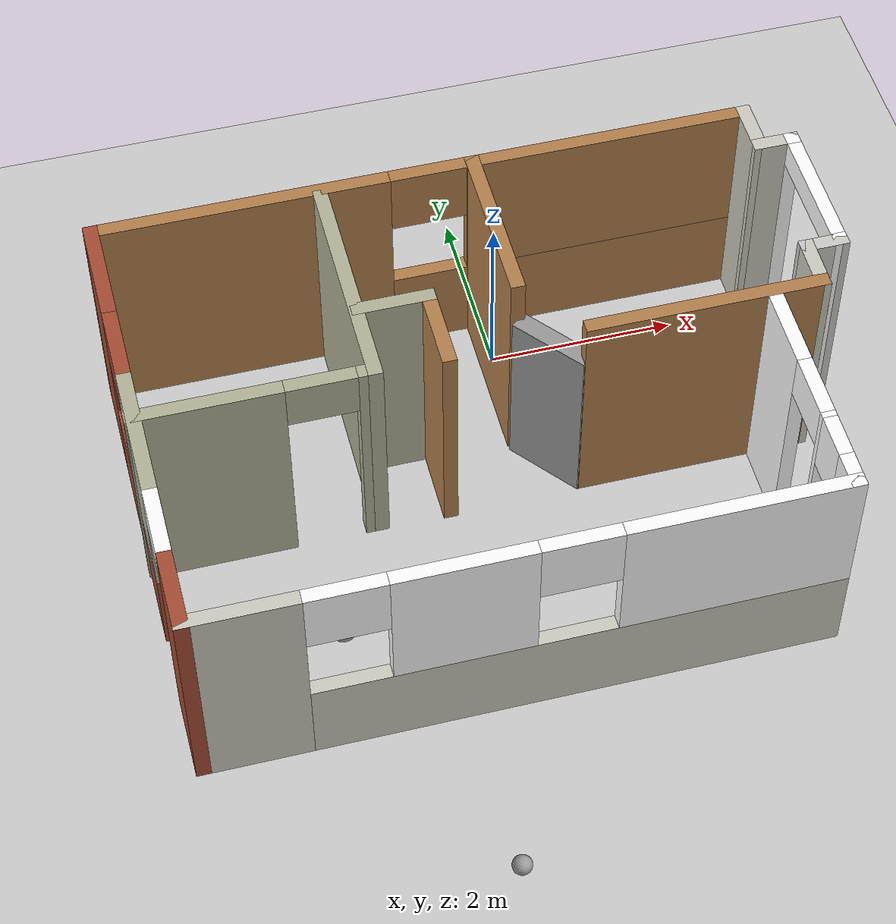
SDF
<sdf version="1.6">
 <world name="default">
  <light name="sun" type="directional">
   <pose>0 0 10 0 -0 0</pose>
   <diffuse>0.8 0.8 0.8 1</diffuse>
   <specular>0.2 0.2 0.2 1</specular>
   <attenuation>
    <range>1000</range>
    <constant>0.9</constant>
    <linear>0.01</linear>
    <quadratic>0.001</quadratic>
   </attenuation>
   <direction>-0.5 0.1 -0.9</direction>
  </light>
  <model name="ground_plane">
   <static>1</static>
   <link name="link">
    <collision name="collision">
     <geometry><plane><normal>0 0 1</normal><size>100 100</size></plane></geometry>
     <surface>
      <contact><collide_bitmask>65535</collide_bitmask></contact>
      <friction><ode><mu>100</mu><mu2>50</mu2></ode></friction>
     </surface>
    </collision>
    <visual name="visual">
     <cast_shadows>0</cast_shadows>
     <geometry><plane><normal>0 0 1</normal><size>100 100</size></plane></geometry>
     <material>
      <script><uri>file://media/materials/scripts/gazebo.material</uri><name>Gazebo/Grey</name></script>
     </material>
    </visual>
   </link>
  </model>
  <gravity>0 0 -9.8</gravity>
  <magnetic_field>6e-06 2.3e-05 -4.2e-05</magnetic_field>
  <atmosphere type="adiabatic"/>
  <physics name="default_physics" default="0" type="ode">
   <max_step_size>0.001</max_step_size>
   <real_time_factor>1</real_time_factor>
   <real_time_update_rate>1000</real_time_update_rate>
  </physics>
  <scene><ambient>0.4 0.4 0.4 1</ambient><background>0.7 0.7 0.7 1</background><shadows>1</shadows></scene>
  <audio><device>default</device></audio>
  <spherical_coordinates>
   <surface_model>EARTH_WGS84</surface_model>
   <latitude_deg>0</latitude_deg>
   <longitude_deg>0</longitude_deg>
   <elevation>0</elevation>
   <heading_deg>0</heading_deg>
  </spherical_coordinates>
  <model name="WannaBeRoomba">
   <link name="link_0">
    <inertial>
     <mass>1</mass>
     <inertia><ixx>0.145833</ixx><ixy>0</ixy><ixz>0</ixz><iyy>0.145833</iyy><iyz>0</iyz><izz>0.125</izz></inertia>
    </inertial>
    <pose>-0.048459 0.01125 0 0 -0 0</pose>
    <visual name="visual">
     <geometry><cylinder><radius>0.15</radius><length>0.1</length></cylinder></geometry>
     <material>
      <lighting>1</lighting>
      <script><uri>file://media/materials/scripts/gazebo.material</uri><name>Gazebo/Grey</name></script>
      <shader type="vertex"><normal_map>__default__</normal_map></shader>
      <ambient>0.3 0.3 0.3 1</ambient>
      <diffuse>0.7 0.7 0.7 1</diffuse>
      <specular>0.01 0.01 0.01 1</specular>
      <emissive>0 0 0 1</emissive>
     </material>
    </visual>
    <collision name="collision">
     <geometry><cylinder><radius>0.15</radius><length>0.1</length></cylinder></geometry>
     <surface>
      <friction>
       <ode><mu>1</mu><mu2>1</mu2><fdir1>0 0 0</fdir1><slip1>0</slip1><slip2>0</slip2></ode>
       <torsional>
        <coefficient>1</coefficient>
        <patch_radius>0</patch_radius>
        <surface_radius>0</surface_radius>
        <use_patch_radius>1</use_patch_radius>
        <ode><slip>0</slip></ode>
       </torsional>
      </friction>
      <bounce><restitution_coefficient>0</restitution_coefficient><threshold>1e+06</threshold></bounce>
      <contact>
       <collide_without_contact>0</collide_without_contact>
       <collide_without_contact_bitmask>1</collide_without_contact_bitmask>
       <collide_bitmask>1</collide_bitmask>
       <ode>
        <soft_cfm>0</soft_cfm>
        <soft_erp>0.2</soft_erp>
        <kp>1e+13</kp>
        <kd>1</kd>
        <max_vel>0.01</max_vel>
        <min_depth>0</min_depth>
       </ode>
       <bullet>
        <split_impulse>1</split_impulse>
        <split_impulse_penetration_threshold>-0.01</split_impulse_penetration_threshold>
        <soft_cfm>0</soft_cfm>
        <soft_erp>0.2</soft_erp>
        <kp>1e+13</kp>
        <kd>1</kd>
       </bullet>
      </contact>
     </surface>
    </collision>
   </link>
   <link name="link_1_clone">
    <inertial>
     <mass>1</mass>
     <inertia><ixx>0.145833</ixx><ixy>0</ixy><ixz>0</ixz><iyy>0.145833</iyy><iyz>0</iyz><izz>0.125</izz></inertia>
    </inertial>
    <pose>-0.048459 -0.14876 0 1.5707 -0 0</pose>
    <visual name="visual">
     <geometry><cylinder><radius>0.1</radius><length>0.02</length></cylinder></geometry>
     <material>
      <lighting>1</lighting>
      <script><uri>file://media/materials/scripts/gazebo.material</uri><name>Gazebo/Grey</name></script>
      <shader type="vertex"><normal_map>__default__</normal_map></shader>
      <ambient>0.3 0.3 0.3 1</ambient>
      <diffuse>0.7 0.7 0.7 1</diffuse>
      <specular>0.01 0.01 0.01 1</specular>
      <emissive>0 0 0 1</emissive>
     </material>
    </visual>
    <collision name="collision">
     <geometry><cylinder><radius>0.1</radius><length>0.02</length></cylinder></geometry>
     <surface>
      <friction>
       <ode><mu>1</mu><mu2>1</mu2><fdir1>0 0 0</fdir1><slip1>0</slip1><slip2>0</slip2></ode>
       <torsional>
        <coefficient>1</coefficient>
        <patch_radius>0</patch_radius>
        <surface_radius>0</surface_radius>
        <use_patch_radius>1</use_patch_radius>
        <ode><slip>0</slip></ode>
       </torsional>
      </friction>
      <bounce><restitution_coefficient>0</restitution_coefficient><threshold>1e+06</threshold></bounce>
      <contact>
       <collide_without_contact>0</collide_without_contact>
       <collide_without_contact_bitmask>1</collide_without_contact_bitmask>
       <collide_bitmask>1</collide_bitmask>
       <ode>
        <soft_cfm>0</soft_cfm>
        <soft_erp>0.2</soft_erp>
        <kp>1e+13</kp>
        <kd>1</kd>
        <max_vel>0.01</max_vel>
        <min_depth>0</min_depth>
       </ode>
       <bullet>
        <split_impulse>1</split_impulse>
        <split_impulse_penetration_threshold>-0.01</split_impulse_penetration_threshold>
        <soft_cfm>0</soft_cfm>
        <soft_erp>0.2</soft_erp>
        <kp>1e+13</kp>
        <kd>1</kd>
       </bullet>
      </contact>
     </surface>
    </collision>
   </link>
   <link name="link_1_clone_clone">
    <inertial>
     <mass>1</mass>
     <inertia><ixx>0.145833</ixx><ixy>0</ixy><ixz>0</ixz><iyy>0.145833</iyy><iyz>0</iyz><izz>0.125</izz></inertia>
    </inertial>
    <pose>-0.048459 0.17126 0 1.5707 -0 0</pose>
    <visual name="visual">
     <geometry><cylinder><radius>0.1</radius><length>0.02</length></cylinder></geometry>
     <material>
      <lighting>1</lighting>
      <script><uri>file://media/materials/scripts/gazebo.material</uri><name>Gazebo/Grey</name></script>
      <shader type="vertex"><normal_map>__default__</normal_map></shader>
      <ambient>0.3 0.3 0.3 1</ambient>
      <diffuse>0.7 0.7 0.7 1</diffuse>
      <specular>0.01 0.01 0.01 1</specular>
      <emissive>0 0 0 1</emissive>
     </material>
    </visual>
    <collision name="collision">
     <geometry><cylinder><radius>0.1</radius><length>0.02</length></cylinder></geometry>
     <surface>
      <friction>
       <ode><mu>1</mu><mu2>1</mu2><fdir1>0 0 0</fdir1><slip1>0</slip1><slip2>0</slip2></ode>
       <torsional>
        <coefficient>1</coefficient>
        <patch_radius>0</patch_radius>
        <surface_radius>0</surface_radius>
        <use_patch_radius>1</use_patch_radius>
        <ode><slip>0</slip></ode>
       </torsional>
      </friction>
      <bounce><restitution_coefficient>0</restitution_coefficient><threshold>1e+06</threshold></bounce>
      <contact>
       <collide_without_contact>0</collide_without_contact>
       <collide_without_contact_bitmask>1</collide_without_contact_bitmask>
       <collide_bitmask>1</collide_bitmask>
       <ode>
        <soft_cfm>0</soft_cfm>
        <soft_erp>0.2</soft_erp>
        <kp>1e+13</kp>
        <kd>1</kd>
        <max_vel>0.01</max_vel>
        <min_depth>0</min_depth>
       </ode>
       <bullet>
        <split_impulse>1</split_impulse>
        <split_impulse_penetration_threshold>-0.01</split_impulse_penetration_threshold>
        <soft_cfm>0</soft_cfm>
        <soft_erp>0.2</soft_erp>
        <kp>1e+13</kp>
        <kd>1</kd>
       </bullet>
      </contact>
     </surface>
    </collision>
   </link>
   <link name="link_2">
    <inertial>
     <mass>1</mass>
     <inertia><ixx>0.1</ixx><ixy>0</ixy><ixz>0</ixz><iyy>0.1</iyy><iyz>0</iyz><izz>0.1</izz></inertia>
    </inertial>
    <pose>0.051541 0.01125 -0.05 0 -0 0</pose>
    <visual name="visual">
     <geometry><sphere><radius>0.05</radius></sphere></geometry>
     <material>
      <lighting>1</lighting>
      <script><uri>file://media/materials/scripts/gazebo.material</uri><name>Gazebo/Grey</name></script>
      <shader type="vertex"><normal_map>__default__</normal_map></shader>
      <ambient>0.3 0.3 0.3 1</ambient>
      <diffuse>0.7 0.7 0.7 1</diffuse>
      <specular>0.01 0.01 0.01 1</specular>
      <emissive>0 0 0 1</emissive>
     </material>
    </visual>
    <collision name="collision">
     <geometry><sphere><radius>0.05</radius></sphere></geometry>
     <surface>
      <friction>
       <ode><mu>1</mu><mu2>1</mu2><fdir1>0 0 0</fdir1><slip1>0</slip1><slip2>0</slip2></ode>
       <torsional>
        <coefficient>1</coefficient>
        <patch_radius>0</patch_radius>
        <surface_radius>0</surface_radius>
        <use_patch_radius>1</use_patch_radius>
        <ode><slip>0</slip></ode>
       </torsional>
      </friction>
      <bounce><restitution_coefficient>0</restitution_coefficient><threshold>1e+06</threshold></bounce>
      <contact>
       <collide_without_contact>0</collide_without_contact>
       <collide_without_contact_bitmask>1</collide_without_contact_bitmask>
       <collide_bitmask>1</collide_bitmask>
       <ode>
        <soft_cfm>0</soft_cfm>
        <soft_erp>0.2</soft_erp>
        <kp>1e+13</kp>
        <kd>1</kd>
        <max_vel>0.01</max_vel>
        <min_depth>0</min_depth>
       </ode>
       <bullet>
        <split_impulse>1</split_impulse>
        <split_impulse_penetration_threshold>-0.01</split_impulse_penetration_threshold>
        <soft_cfm>0</soft_cfm>
        <soft_erp>0.2</soft_erp>
        <kp>1e+13</kp>
        <kd>1</kd>
       </bullet>
      </contact>
     </surface>
    </collision>
   </link>
   <joint name="link_0_JOINT_0" type="revolute">
    <parent>link_0</parent>
    <child>link_1_clone</child>
    <axis>
     <xyz>0 0 1</xyz>
     <use_parent_model_frame>0</use_parent_model_frame>
     <limit>
      <lower>-1.79769e+308</lower>
      <upper>1.79769e+308</upper>
      <effort>-1</effort>
      <velocity>-1</velocity>
     </limit>
     <dynamics>
      <spring_reference>0</spring_reference>
      <spring_stiffness>0</spring_stiffness>
      <damping>0</damping>
      <friction>0</friction>
     </dynamics>
    </axis>
    <physics>
     <ode><limit><cfm>0</cfm><erp>0.2</erp></limit><suspension><cfm>0</cfm><erp>0.2</erp></suspension></ode>
    </physics>
   </joint>
   <joint name="link_0_JOINT_2" type="revolute">
    <parent>link_0</parent>
    <child>link_1_clone_clone</child>
    <axis>
     <xyz>0 0 1</xyz>
     <use_parent_model_frame>0</use_parent_model_frame>
     <limit>
      <lower>-1.79769e+308</lower>
      <upper>1.79769e+308</upper>
      <effort>-1</effort>
      <velocity>-1</velocity>
     </limit>
     <dynamics>
      <spring_reference>0</spring_reference>
      <spring_stiffness>0</spring_stiffness>
      <damping>0</damping>
     </dynamics>
    </axis>
    <physics>
     <ode><limit><cfm>0</cfm><erp>0.2</erp></limit><suspension><cfm>0</cfm><erp>0.2</erp></suspension></ode>
    </physics>
   </joint>
   <joint name="link_0_JOINT_3" type="ball">
    <parent>link_0</parent>
    <child>link_2</child>
    <physics>
     <ode><limit><cfm>0</cfm><erp>0.2</erp></limit><suspension><cfm>0</cfm><erp>0.2</erp></suspension></ode>
    </physics>
   </joint>
   <static>0</static>
   <pose>-2.30217 -3.02933 0.1 2e-06 3e-06 0.037965</pose>
  </model>
  <model name="TwoRoomCondo">
   <pose>-0.41151 -1.84536 0 0 -0 0</pose>
   <link name="Door_2">
    <collision name="Door_2_Collision">
     <geometry><box><size>0.872 0.2 2</size></box></geometry>
     <pose>0 0 1 0 -0 0</pose>
    </collision>
    <visual name="Door_2_Visual">
     <pose>0 0 1 0 -0 0</pose>
     <geometry><box><size>0.872 0.2 2</size></box></geometry>
     <material>
      <script><uri>file://media/materials/scripts/gazebo.material</uri><name>Gazebo/Grey</name></script>
     </material>
    </visual>
    <pose>0.624392 0.325413 0 0 -0 2.24345</pose>
   </link>
   <link name="Wall_0">
    <pose>-0.171962 2.42484 0 0 -0 0</pose>
    <visual name="Wall_0_Visual_0">
     <pose>-1.93303 0 1.25 0 -0 0</pose>
     <geometry><box><size>3.13395 0.15 2.5</size></box></geometry>
     <material>
      <script><uri>file://media/materials/scripts/gazebo.material</uri><name>Gazebo/Wood</name></script>
      <ambient>1 1 1 1</ambient>
     </material>
     <meta><layer>0</layer></meta>
    </visual>
    <collision name="Wall_0_Collision_0">
     <geometry><box><size>3.13395 0.15 2.5</size></box></geometry>
     <pose>-1.93303 0 1.25 0 -0 0</pose>
    </collision>
    <visual name="Wall_0_Visual_1">
     <pose>1.56697 0 0.5 0 -0 0</pose>
     <geometry><box><size>3.86605 0.15 1</size></box></geometry>
     <material>
      <script><uri>file://media/materials/scripts/gazebo.material</uri><name>Gazebo/Wood</name></script>
      <ambient>1 1 1 1</ambient>
     </material>
     <meta><layer>0</layer></meta>
    </visual>
    <collision name="Wall_0_Collision_1">
     <geometry><box><size>3.86605 0.15 1</size></box></geometry>
     <pose>1.56697 0 0.5 0 -0 0</pose>
    </collision>
    <visual name="Wall_0_Visual_2">
     <pose>1.96697 0 1.75 0 -0 0</pose>
     <geometry><box><size>3.06605 0.15 1.5</size></box></geometry>
     <material>
      <script><uri>file://media/materials/scripts/gazebo.material</uri><name>Gazebo/Wood</name></script>
      <ambient>1 1 1 1</ambient>
     </material>
     <meta><layer>0</layer></meta>
    </visual>
    <collision name="Wall_0_Collision_2">
     <geometry><box><size>3.06605 0.15 1.5</size></box></geometry>
     <pose>1.96697 0 1.75 0 -0 0</pose>
    </collision>
    <visual name="Wall_0_Visual_3">
     <pose>0.033946 0 2.15 0 -0 0</pose>
     <geometry><box><size>0.8 0.15 0.7</size></box></geometry>
     <material>
      <script><uri>file://media/materials/scripts/gazebo.material</uri><name>Gazebo/Wood</name></script>
      <ambient>1 1 1 1</ambient>
     </material>
     <meta><layer>0</layer></meta>
    </visual>
    <collision name="Wall_0_Collision_3">
     <geometry><box><size>0.8 0.15 0.7</size></box></geometry>
     <pose>0.033946 0 2.15 0 -0 0</pose>
    </collision>
   </link>
   <link name="Wall_12">
    <collision name="Wall_12_Collision">
     <geometry><box><size>0.95 0.15 2.5</size></box></geometry>
     <pose>0 0 1.25 0 -0 0</pose>
    </collision>
    <visual name="Wall_12_Visual">
     <pose>0 0 1.25 0 -0 0</pose>
     <geometry><box><size>0.95 0.15 2.5</size></box></geometry>
     <material>
      <script><uri>file://media/materials/scripts/gazebo.material</uri><name>Gazebo/Wood</name></script>
      <ambient>1 1 1 1</ambient>
     </material>
     <meta><layer>0</layer></meta>
    </visual>
    <pose>-0.5401 0.372915 0 0 -0 -1.5708</pose>
   </link>
   <link name="Wall_14">
    <collision name="Wall_14_Collision">
     <geometry><box><size>1.85 0.15 2.5</size></box></geometry>
     <pose>0 0 1.25 0 -0 0</pose>
    </collision>
    <visual name="Wall_14_Visual">
     <pose>0 0 1.25 0 -0 0</pose>
     <geometry><box><size>1.85 0.15 2.5</size></box></geometry>
     <material>
      <script><uri>file://media/materials/scripts/gazebo.material</uri><name>Gazebo/Wood</name></script>
      <ambient>0.921569 0.807843 0.615686 1</ambient>
     </material>
     <meta><layer>0</layer></meta>
    </visual>
    <pose>0.3419 1.57492 0 0 -0 -1.5708</pose>
   </link>
   <link name="Wall_16">
    <collision name="Wall_16_Collision">
     <geometry><box><size>2.5 0.15 2.5</size></box></geometry>
     <pose>0 0 1.25 0 -0 0</pose>
    </collision>
    <visual name="Wall_16_Visual">
     <pose>0 0 1.25 0 -0 0</pose>
     <geometry><box><size>2.5 0.15 2.5</size></box></geometry>
     <material>
      <script><uri>file://media/materials/scripts/gazebo.material</uri><name>Gazebo/Wood</name></script>
      <ambient>1 1 1 1</ambient>
     </material>
     <meta><layer>0</layer></meta>
    </visual>
    <pose>2.08239 -0.001251 0 0 -0 0</pose>
   </link>
   <link name="Wall_2">
    <pose>-3.59696 -0.000164 0 0 -0 -1.5708</pose>
    <visual name="Wall_2_Visual_0">
     <pose>-1.91467 0 1.25 0 -0 0</pose>
     <geometry><box><size>1.17065 0.15 2.5</size></box></geometry>
     <material>
      <script><uri>file://media/materials/scripts/gazebo.material</uri><name>Gazebo/Bricks</name></script>
      <ambient>1 1 1 1</ambient>
     </material>
     <meta><layer>0</layer></meta>
    </visual>
    <collision name="Wall_2_Collision_0">
     <geometry><box><size>1.17065 0.15 2.5</size></box></geometry>
     <pose>-1.91467 0 1.25 0 -0 0</pose>
    </collision>
    <visual name="Wall_2_Visual_1">
     <pose>2.06465 0 1.25 0 -0 0</pose>
     <geometry><box><size>0.870703 0.15 2.5</size></box></geometry>
     <material>
      <script><uri>file://media/materials/scripts/gazebo.material</uri><name>Gazebo/Bricks</name></script>
      <ambient>1 1 1 1</ambient>
     </material>
     <meta><layer>0</layer></meta>
    </visual>
    <collision name="Wall_2_Collision_1">
     <geometry><box><size>0.870703 0.15 2.5</size></box></geometry>
     <pose>2.06465 0 1.25 0 -0 0</pose>
    </collision>
    <visual name="Wall_2_Visual_2">
     <pose>-0.217366 0 0.5 0 -0 0</pose>
     <geometry><box><size>2.22396 0.15 1</size></box></geometry>
     <material>
      <script><uri>file://media/materials/scripts/gazebo.material</uri><name>Gazebo/Bricks</name></script>
      <ambient>1 1 1 1</ambient>
     </material>
     <meta><layer>0</layer></meta>
    </visual>
    <collision name="Wall_2_Collision_2">
     <geometry><box><size>2.22396 0.15 1</size></box></geometry>
     <pose>-0.217366 0 0.5 0 -0 0</pose>
    </collision>
    <visual name="Wall_2_Visual_3">
     <pose>0.182634 0 1.75 0 -0 0</pose>
     <geometry><box><size>1.42396 0.15 1.5</size></box></geometry>
     <material>
      <script><uri>file://media/materials/scripts/gazebo.material</uri><name>Gazebo/Residential</name></script>
      <ambient>1 1 1 1</ambient>
     </material>
     <meta><layer>0</layer></meta>
    </visual>
    <collision name="Wall_2_Collision_3">
     <geometry><box><size>1.42396 0.15 1.5</size></box></geometry>
     <pose>0.182634 0 1.75 0 -0 0</pose>
    </collision>
    <visual name="Wall_2_Visual_4">
     <pose>-0.929348 0 2.15 0 -0 0</pose>
     <geometry><box><size>0.8 0.15 0.7</size></box></geometry>
     <material>
      <script><uri>file://media/materials/scripts/gazebo.material</uri><name>Gazebo/Bricks</name></script>
      <ambient>1 1 1 1</ambient>
     </material>
     <meta><layer>0</layer></meta>
    </visual>
    <collision name="Wall_2_Collision_4">
     <geometry><box><size>0.8 0.15 0.7</size></box></geometry>
     <pose>-0.929348 0 2.15 0 -0 0</pose>
    </collision>
    <visual name="Wall_2_Visual_5">
     <pose>1.26196 0 2.25 0 -0 0</pose>
     <geometry><box><size>0.73468 0.15 0.5</size></box></geometry>
     <material>
      <script><uri>file://media/materials/scripts/gazebo.material</uri><name>Gazebo/Footway</name></script>
      <ambient>1 1 1 1</ambient>
     </material>
     <meta><layer>0</layer></meta>
    </visual>
    <collision name="Wall_2_Collision_5">
     <geometry><box><size>0.73468 0.15 0.5</size></box></geometry>
     <pose>1.26196 0 2.25 0 -0 0</pose>
    </collision>
   </link>
   <link name="Wall_20">
    <collision name="Wall_20_Collision">
     <geometry><box><size>0.5 0.15 2.5</size></box></geometry>
     <pose>0 0 1.25 0 -0 0</pose>
    </collision>
    <visual name="Wall_20_Visual">
     <pose>0 0 1.25 0 -0 0</pose>
     <geometry><box><size>0.5 0.15 2.5</size></box></geometry>
     <material>
      <script><uri>file://media/materials/scripts/gazebo.material</uri><name>Gazebo/PaintedWall</name></script>
      <ambient>1 1 1 1</ambient>
     </material>
     <meta><layer>0</layer></meta>
    </visual>
    <pose>3.43021 1.92918 0 0 -0 0</pose>
   </link>
   <link name="Wall_22">
    <collision name="Wall_22_Collision">
     <geometry><box><size>0.5 0.15 2.5</size></box></geometry>
     <pose>0 0 1.25 0 -0 0</pose>
    </collision>
    <visual name="Wall_22_Visual">
     <pose>0 0 1.25 0 -0 0</pose>
     <geometry><box><size>0.5 0.15 2.5</size></box></geometry>
     <material>
      <script><uri>file://media/materials/scripts/gazebo.material</uri><name>Gazebo/CeilingTiled</name></script>
      <ambient>1 1 1 1</ambient>
     </material>
     <meta><layer>0</layer></meta>
    </visual>
    <pose>3.43891 0.468314 0 0 -0 0</pose>
   </link>
   <link name="Wall_24">
    <collision name="Wall_24_Collision">
     <geometry><box><size>0.645657 0.15 2.5</size></box></geometry>
     <pose>0 0 1.25 0 -0 0</pose>
    </collision>
    <visual name="Wall_24_Visual">
     <pose>0 0 1.25 0 -0 0</pose>
     <geometry><box><size>0.645657 0.15 2.5</size></box></geometry>
     <material>
      <script><uri>file://media/materials/scripts/gazebo.material</uri><name>Gazebo/PaintedWall</name></script>
      <ambient>1 1 1 1</ambient>
     </material>
     <meta><layer>0</layer></meta>
    </visual>
    <pose>3.25413 2.17701 0 0 -0 -1.56641</pose>
   </link>
   <link name="Wall_26">
    <collision name="Wall_26_Collision">
     <geometry><box><size>0.619611 0.15 2.5</size></box></geometry>
     <pose>0 0 1.25 0 -0 0</pose>
    </collision>
    <visual name="Wall_26_Visual">
     <pose>0 0 1.25 0 -0 0</pose>
     <geometry><box><size>0.619611 0.15 2.5</size></box></geometry>
     <material>
      <script><uri>file://media/materials/scripts/gazebo.material</uri><name>Gazebo/PaintedWall</name></script>
      <ambient>1 1 1 1</ambient>
     </material>
     <meta><layer>0</layer></meta>
    </visual>
    <pose>3.26065 0.233532 0 0 -0 -1.58468</pose>
   </link>
   <link name="Wall_3">
    <pose>-0.421962 -2.42516 0 0 -0 0</pose>
    <visual name="Wall_3_Visual_0">
     <pose>-2.66467 0 1.25 0 -0 0</pose>
     <geometry><box><size>1.17065 0.15 2.5</size></box></geometry>
     <material>
      <script><uri>file://media/materials/scripts/gazebo.material</uri><name>Gazebo/PaintedWall</name></script>
      <ambient>1 1 1 1</ambient>
     </material>
     <meta><layer>0</layer></meta>
    </visual>
    <collision name="Wall_3_Collision_0">
     <geometry><box><size>1.17065 0.15 2.5</size></box></geometry>
     <pose>-2.66467 0 1.25 0 -0 0</pose>
    </collision>
    <visual name="Wall_3_Visual_1">
     <pose>0.585326 0 0.5 0 -0 0</pose>
     <geometry><box><size>5.32935 0.15 1</size></box></geometry>
     <material>
      <script><uri>file://media/materials/scripts/gazebo.material</uri><name>Gazebo/PaintedWall</name></script>
      <ambient>1 1 1 1</ambient>
     </material>
     <meta><layer>0</layer></meta>
    </visual>
    <collision name="Wall_3_Collision_1">
     <geometry><box><size>5.32935 0.15 1</size></box></geometry>
     <pose>0.585326 0 0.5 0 -0 0</pose>
    </collision>
    <visual name="Wall_3_Visual_2">
     <pose>-0.575 0 1.75 0 -0 0</pose>
     <geometry><box><size>1.4087 0.15 1.5</size></box></geometry>
     <material>
      <script><uri>file://media/materials/scripts/gazebo.material</uri><name>Gazebo/PioneerBody</name></script>
      <ambient>1 1 1 1</ambient>
     </material>
     <meta><layer>0</layer></meta>
    </visual>
    <collision name="Wall_3_Collision_2">
     <geometry><box><size>1.4087 0.15 1.5</size></box></geometry>
     <pose>-0.575 0 1.75 0 -0 0</pose>
    </collision>
    <visual name="Wall_3_Visual_3">
     <pose>2.08967 0 1.75 0 -0 0</pose>
     <geometry><box><size>2.32065 0.15 1.5</size></box></geometry>
     <material>
      <script><uri>file://media/materials/scripts/gazebo.material</uri><name>Gazebo/PioneerBody</name></script>
      <ambient>1 1 1 1</ambient>
     </material>
     <meta><layer>0</layer></meta>
    </visual>
    <collision name="Wall_3_Collision_3">
     <geometry><box><size>2.32065 0.15 1.5</size></box></geometry>
     <pose>2.08967 0 1.75 0 -0 0</pose>
    </collision>
    <visual name="Wall_3_Visual_4">
     <pose>-1.67935 0 2.15 0 -0 0</pose>
     <geometry><box><size>0.8 0.15 0.7</size></box></geometry>
     <material>
      <script><uri>file://media/materials/scripts/gazebo.material</uri><name>Gazebo/PioneerBody</name></script>
      <ambient>1 1 1 1</ambient>
     </material>
     <meta><layer>0</layer></meta>
    </visual>
    <collision name="Wall_3_Collision_4">
     <geometry><box><size>0.8 0.15 0.7</size></box></geometry>
     <pose>-1.67935 0 2.15 0 -0 0</pose>
    </collision>
    <visual name="Wall_3_Visual_5">
     <pose>0.529348 0 2.15 0 -0 0</pose>
     <geometry><box><size>0.8 0.15 0.7</size></box></geometry>
     <material>
      <script><uri>file://media/materials/scripts/gazebo.material</uri><name>Gazebo/PioneerBody</name></script>
      <ambient>1 1 1 1</ambient>
     </material>
     <meta><layer>0</layer></meta>
    </visual>
    <collision name="Wall_3_Collision_5">
     <geometry><box><size>0.8 0.15 0.7</size></box></geometry>
     <pose>0.529348 0 2.15 0 -0 0</pose>
    </collision>
   </link>
   <link name="Wall_30">
    <pose>3.60956 1.19875 0 0 -0 -1.56484</pose>
    <visual name="Wall_30_Visual_0">
     <pose>-0.729905 0 1.25 0 -0 0</pose>
     <geometry><box><size>0.151086 0.15 2.5</size></box></geometry>
     <material>
      <script><uri>file://media/materials/scripts/gazebo.material</uri><name>Gazebo/PioneerBody</name></script>
      <ambient>1 1 1 1</ambient>
     </material>
     <meta><layer>0</layer></meta>
    </visual>
    <collision name="Wall_30_Collision_0">
     <geometry><box><size>0.151086 0.15 2.5</size></box></geometry>
     <pose>-0.729905 0 1.25 0 -0 0</pose>
    </collision>
    <visual name="Wall_30_Visual_1">
     <pose>0.075543 0 0.1 0 -0 0</pose>
     <geometry><box><size>1.45981 0.15 0.2</size></box></geometry>
     <material>
      <script><uri>file://media/materials/scripts/gazebo.material</uri><name>Gazebo/PioneerBody</name></script>
      <ambient>1 1 1 1</ambient>
     </material>
     <meta><layer>0</layer></meta>
    </visual>
    <collision name="Wall_30_Collision_1">
     <geometry><box><size>1.45981 0.15 0.2</size></box></geometry>
     <pose>0.075543 0 0.1 0 -0 0</pose>
    </collision>
    <visual name="Wall_30_Visual_2">
     <pose>0.725543 0 1.35 0 -0 0</pose>
     <geometry><box><size>0.15981 0.15 2.3</size></box></geometry>
     <material>
      <script><uri>file://media/materials/scripts/gazebo.material</uri><name>Gazebo/PioneerBody</name></script>
      <ambient>1 1 1 1</ambient>
     </material>
     <meta><layer>0</layer></meta>
    </visual>
    <collision name="Wall_30_Collision_2">
     <geometry><box><size>0.15981 0.15 2.3</size></box></geometry>
     <pose>0.725543 0 1.35 0 -0 0</pose>
    </collision>
    <visual name="Wall_30_Visual_3">
     <pose>-0.004362 0 2.35 0 -0 0</pose>
     <geometry><box><size>1.3 0.15 0.3</size></box></geometry>
     <material>
      <script><uri>file://media/materials/scripts/gazebo.material</uri><name>Gazebo/Pioneer2Body</name></script>
      <ambient>1 1 1 1</ambient>
     </material>
     <meta><layer>0</layer></meta>
    </visual>
    <collision name="Wall_30_Collision_3">
     <geometry><box><size>1.3 0.15 0.3</size></box></geometry>
     <pose>-0.004362 0 2.35 0 -0 0</pose>
    </collision>
   </link>
   <link name="Wall_4">
    <pose>2.75304 -1.25016 0 0 -0 1.5708</pose>
    <visual name="Wall_4_Visual_0">
     <pose>-1.05267 0 1.25 0 -0 0</pose>
     <geometry><box><size>0.394652 0.15 2.5</size></box></geometry>
     <material>
      <script><uri>file://media/materials/scripts/gazebo.material</uri><name>Gazebo/Pioneer2Body</name></script>
      <ambient>1 1 1 1</ambient>
     </material>
     <meta><layer>0</layer></meta>
    </visual>
    <collision name="Wall_4_Collision_0">
     <geometry><box><size>0.394652 0.15 2.5</size></box></geometry>
     <pose>-1.05267 0 1.25 0 -0 0</pose>
    </collision>
    <visual name="Wall_4_Visual_1">
     <pose>0.789674 0 1.25 0 -0 0</pose>
     <geometry><box><size>0.920652 0.15 2.5</size></box></geometry>
     <material>
      <script><uri>file://media/materials/scripts/gazebo.material</uri><name>Gazebo/Pioneer2Body</name></script>
      <ambient>1 1 1 1</ambient>
     </material>
     <meta><layer>0</layer></meta>
    </visual>
    <collision name="Wall_4_Collision_1">
     <geometry><box><size>0.920652 0.15 2.5</size></box></geometry>
     <pose>0.789674 0 1.25 0 -0 0</pose>
    </collision>
    <visual name="Wall_4_Visual_2">
     <pose>-0.595609 0 0.5 0 -0 0</pose>
     <geometry><box><size>0.519478 0.15 1</size></box></geometry>
     <material>
      <script><uri>file://media/materials/scripts/gazebo.material</uri><name>Gazebo/Pioneer2Body</name></script>
      <ambient>1 1 1 1</ambient>
     </material>
     <meta><layer>0</layer></meta>
    </visual>
    <collision name="Wall_4_Collision_2">
     <geometry><box><size>0.519478 0.15 1</size></box></geometry>
     <pose>-0.595609 0 0.5 0 -0 0</pose>
    </collision>
    <visual name="Wall_4_Visual_3">
     <pose>-0.369609 0 1.75 0 -0 0</pose>
     <geometry><box><size>0.067478 0.15 1.5</size></box></geometry>
     <material>
      <script><uri>file://media/materials/scripts/gazebo.material</uri><name>Gazebo/Pioneer2Body</name></script>
      <ambient>1 1 1 1</ambient>
     </material>
     <meta><layer>0</layer></meta>
    </visual>
    <collision name="Wall_4_Collision_3">
     <geometry><box><size>0.067478 0.15 1.5</size></box></geometry>
     <pose>-0.369609 0 1.75 0 -0 0</pose>
    </collision>
    <visual name="Wall_4_Visual_4">
     <pose>-0.629348 0 2.15 0 -0 0</pose>
     <geometry><box><size>0.452 0.15 0.7</size></box></geometry>
     <material>
      <script><uri>file://media/materials/scripts/gazebo.material</uri><name>Gazebo/Pioneer2Body</name></script>
      <ambient>1 1 1 1</ambient>
     </material>
     <meta><layer>0</layer></meta>
    </visual>
    <collision name="Wall_4_Collision_4">
     <geometry><box><size>0.452 0.15 0.7</size></box></geometry>
     <pose>-0.629348 0 2.15 0 -0 0</pose>
    </collision>
    <visual name="Wall_4_Visual_5">
     <pose>-0.003261 0 2.25 0 -0 0</pose>
     <geometry><box><size>0.665217 0.15 0.5</size></box></geometry>
     <material>
      <script><uri>file://media/materials/scripts/gazebo.material</uri><name>Gazebo/Pioneer2Body</name></script>
      <ambient>1 1 1 1</ambient>
     </material>
     <meta><layer>0</layer></meta>
    </visual>
    <collision name="Wall_4_Collision_5">
     <geometry><box><size>0.665217 0.15 0.5</size></box></geometry>
     <pose>-0.003261 0 2.25 0 -0 0</pose>
    </collision>
   </link>
   <link name="Wall_6">
    <pose>-2.43935 -0.009947 0 0 -0 0</pose>
    <visual name="Wall_6_Visual_0">
     <pose>-0.479607 0 1.25 0 -0 0</pose>
     <geometry><box><size>1.54079 0.15 2.5</size></box></geometry>
     <material>
      <script><uri>file://media/materials/scripts/gazebo.material</uri><name>Gazebo/Residential</name></script>
      <ambient>0.921569 0.807843 0.615686 1</ambient>
     </material>
     <meta><layer>0</layer></meta>
    </visual>
    <collision name="Wall_6_Collision_0">
     <geometry><box><size>1.54079 0.15 2.5</size></box></geometry>
     <pose>-0.479607 0 1.25 0 -0 0</pose>
    </collision>
    <visual name="Wall_6_Visual_1">
     <pose>1.12782 0 1.25 0 -0 0</pose>
     <geometry><box><size>0.244363 0.15 2.5</size></box></geometry>
     <material>
      <script><uri>file://media/materials/scripts/gazebo.material</uri><name>Gazebo/Residential</name></script>
      <ambient>0.921569 0.807843 0.615686 1</ambient>
     </material>
     <meta><layer>0</layer></meta>
    </visual>
    <collision name="Wall_6_Collision_1">
     <geometry><box><size>0.244363 0.15 2.5</size></box></geometry>
     <pose>1.12782 0 1.25 0 -0 0</pose>
    </collision>
    <visual name="Wall_6_Visual_2">
     <pose>0.648212 0 2.25 0 -0 0</pose>
     <geometry><box><size>0.71485 0.15 0.5</size></box></geometry>
     <material>
      <script><uri>file://media/materials/scripts/gazebo.material</uri><name>Gazebo/Residential</name></script>
      <ambient>0.921569 0.807843 0.615686 1</ambient>
     </material>
     <meta><layer>0</layer></meta>
    </visual>
    <collision name="Wall_6_Collision_2">
     <geometry><box><size>0.71485 0.15 0.5</size></box></geometry>
     <pose>0.648212 0 2.25 0 -0 0</pose>
    </collision>
   </link>
   <link name="Wall_7">
    <collision name="Wall_7_Collision">
     <geometry><box><size>2.5 0.15 2.5</size></box></geometry>
     <pose>0 0 1.25 0 -0 0</pose>
    </collision>
    <visual name="Wall_7_Visual">
     <pose>0 0 1.25 0 -0 0</pose>
     <geometry><box><size>2.5 0.15 2.5</size></box></geometry>
     <material>
      <script><uri>file://media/materials/scripts/gazebo.material</uri><name>Gazebo/Residential</name></script>
      <ambient>1 1 1 1</ambient>
     </material>
     <meta><layer>0</layer></meta>
    </visual>
    <pose>-1.26435 1.16505 0 0 -0 1.5708</pose>
   </link>
   <link name="Wall_9">
    <collision name="Wall_9_Collision">
     <geometry><box><size>0.85 0.15 2.5</size></box></geometry>
     <pose>0 0 1.25 0 -0 0</pose>
    </collision>
    <visual name="Wall_9_Visual">
     <pose>0 0 1.25 0 -0 0</pose>
     <geometry><box><size>0.85 0.15 2.5</size></box></geometry>
     <material>
      <script><uri>file://media/materials/scripts/gazebo.material</uri><name>Gazebo/Residential</name></script>
      <ambient>1 1 1 1</ambient>
     </material>
     <meta><layer>0</layer></meta>
    </visual>
    <pose>-0.8901 0.772915 0 0 -0 0</pose>
   </link>
   <static>1</static>
  </model>
  <model name="WannaBeRoomba_clone">
   <link name="link_0">
    <inertial>
     <mass>1</mass>
     <inertia><ixx>0.145833</ixx><ixy>0</ixy><ixz>0</ixz><iyy>0.145833</iyy><iyz>0</iyz><izz>0.125</izz></inertia>
    </inertial>
    <pose>-0.048459 0.01125 0 0 -0 0</pose>
    <visual name="visual">
     <geometry><cylinder><radius>0.15</radius><length>0.1</length></cylinder></geometry>
     <material>
      <lighting>1</lighting>
      <script><uri>file://media/materials/scripts/gazebo.material</uri><name>Gazebo/Grey</name></script>
      <shader type="vertex"><normal_map>__default__</normal_map></shader>
      <ambient>0.3 0.3 0.3 1</ambient>
      <diffuse>0.7 0.7 0.7 1</diffuse>
      <specular>0.01 0.01 0.01 1</specular>
      <emissive>0 0 0 1</emissive>
     </material>
    </visual>
    <collision name="collision">
     <geometry><cylinder><radius>0.15</radius><length>0.1</length></cylinder></geometry>
     <surface>
      <friction>
       <ode><mu>1</mu><mu2>1</mu2><fdir1>0 0 0</fdir1><slip1>0</slip1><slip2>0</slip2></ode>
       <torsional>
        <coefficient>1</coefficient>
        <patch_radius>0</patch_radius>
        <surface_radius>0</surface_radius>
        <use_patch_radius>1</use_patch_radius>
        <ode><slip>0</slip></ode>
       </torsional>
      </friction>
      <bounce><restitution_coefficient>0</restitution_coefficient><threshold>1e+06</threshold></bounce>
      <contact>
       <collide_without_contact>0</collide_without_contact>
       <collide_without_contact_bitmask>1</collide_without_contact_bitmask>
       <collide_bitmask>1</collide_bitmask>
       <ode>
        <soft_cfm>0</soft_cfm>
        <soft_erp>0.2</soft_erp>
        <kp>1e+13</kp>
        <kd>1</kd>
        <max_vel>0.01</max_vel>
        <min_depth>0</min_depth>
       </ode>
       <bullet>
        <split_impulse>1</split_impulse>
        <split_impulse_penetration_threshold>-0.01</split_impulse_penetration_threshold>
        <soft_cfm>0</soft_cfm>
        <soft_erp>0.2</soft_erp>
        <kp>1e+13</kp>
        <kd>1</kd>
       </bullet>
      </contact>
     </surface>
    </collision>
   </link>
   <link name="link_1_clone">
    <inertial>
     <mass>1</mass>
     <inertia><ixx>0.145833</ixx><ixy>0</ixy><ixz>0</ixz><iyy>0.145833</iyy><iyz>0</iyz><izz>0.125</izz></inertia>
    </inertial>
    <pose>-0.048459 -0.14876 0 1.5707 -0 0</pose>
    <visual name="visual">
     <geometry><cylinder><radius>0.1</radius><length>0.02</length></cylinder></geometry>
     <material>
      <lighting>1</lighting>
      <script><uri>file://media/materials/scripts/gazebo.material</uri><name>Gazebo/Grey</name></script>
      <shader type="vertex"><normal_map>__default__</normal_map></shader>
      <ambient>0.3 0.3 0.3 1</ambient>
      <diffuse>0.7 0.7 0.7 1</diffuse>
      <specular>0.01 0.01 0.01 1</specular>
      <emissive>0 0 0 1</emissive>
     </material>
    </visual>
    <collision name="collision">
     <geometry><cylinder><radius>0.1</radius><length>0.02</length></cylinder></geometry>
     <surface>
      <friction>
       <ode><mu>1</mu><mu2>1</mu2><fdir1>0 0 0</fdir1><slip1>0</slip1><slip2>0</slip2></ode>
       <torsional>
        <coefficient>1</coefficient>
        <patch_radius>0</patch_radius>
        <surface_radius>0</surface_radius>
        <use_patch_radius>1</use_patch_radius>
        <ode><slip>0</slip></ode>
       </torsional>
      </friction>
      <bounce><restitution_coefficient>0</restitution_coefficient><threshold>1e+06</threshold></bounce>
      <contact>
       <collide_without_contact>0</collide_without_contact>
       <collide_without_contact_bitmask>1</collide_without_contact_bitmask>
       <collide_bitmask>1</collide_bitmask>
       <ode>
        <soft_cfm>0</soft_cfm>
        <soft_erp>0.2</soft_erp>
        <kp>1e+13</kp>
        <kd>1</kd>
        <max_vel>0.01</max_vel>
        <min_depth>0</min_depth>
       </ode>
       <bullet>
        <split_impulse>1</split_impulse>
        <split_impulse_penetration_threshold>-0.01</split_impulse_penetration_threshold>
        <soft_cfm>0</soft_cfm>
        <soft_erp>0.2</soft_erp>
        <kp>1e+13</kp>
        <kd>1</kd>
       </bullet>
      </contact>
     </surface>
    </collision>
   </link>
   <link name="link_1_clone_clone">
    <inertial>
     <mass>1</mass>
     <inertia><ixx>0.145833</ixx><ixy>0</ixy><ixz>0</ixz><iyy>0.145833</iyy><iyz>0</iyz><izz>0.125</izz></inertia>
    </inertial>
    <pose>-0.048459 0.17126 0 1.5707 -0 0</pose>
    <visual name="visual">
     <geometry><cylinder><radius>0.1</radius><length>0.02</length></cylinder></geometry>
     <material>
      <lighting>1</lighting>
      <script><uri>file://media/materials/scripts/gazebo.material</uri><name>Gazebo/Grey</name></script>
      <shader type="vertex"><normal_map>__default__</normal_map></shader>
      <ambient>0.3 0.3 0.3 1</ambient>
      <diffuse>0.7 0.7 0.7 1</diffuse>
      <specular>0.01 0.01 0.01 1</specular>
      <emissive>0 0 0 1</emissive>
     </material>
    </visual>
    <collision name="collision">
     <geometry><cylinder><radius>0.1</radius><length>0.02</length></cylinder></geometry>
     <surface>
      <friction>
       <ode><mu>1</mu><mu2>1</mu2><fdir1>0 0 0</fdir1><slip1>0</slip1><slip2>0</slip2></ode>
       <torsional>
        <coefficient>1</coefficient>
        <patch_radius>0</patch_radius>
        <surface_radius>0</surface_radius>
        <use_patch_radius>1</use_patch_radius>
        <ode><slip>0</slip></ode>
       </torsional>
      </friction>
      <bounce><restitution_coefficient>0</restitution_coefficient><threshold>1e+06</threshold></bounce>
      <contact>
       <collide_without_contact>0</collide_without_contact>
       <collide_without_contact_bitmask>1</collide_without_contact_bitmask>
       <collide_bitmask>1</collide_bitmask>
       <ode>
        <soft_cfm>0</soft_cfm>
        <soft_erp>0.2</soft_erp>
        <kp>1e+13</kp>
        <kd>1</kd>
        <max_vel>0.01</max_vel>
        <min_depth>0</min_depth>
       </ode>
       <bullet>
        <split_impulse>1</split_impulse>
        <split_impulse_penetration_threshold>-0.01</split_impulse_penetration_threshold>
        <soft_cfm>0</soft_cfm>
        <soft_erp>0.2</soft_erp>
        <kp>1e+13</kp>
        <kd>1</kd>
       </bullet>
      </contact>
     </surface>
    </collision>
   </link>
   <link name="link_2">
    <inertial>
     <mass>1</mass>
     <inertia><ixx>0.1</ixx><ixy>0</ixy><ixz>0</ixz><iyy>0.1</iyy><iyz>0</iyz><izz>0.1</izz></inertia>
    </inertial>
    <pose>0.051541 0.01125 -0.05 0 -0 0</pose>
    <visual name="visual">
     <geometry><sphere><radius>0.05</radius></sphere></geometry>
     <material>
      <lighting>1</lighting>
      <script><uri>file://media/materials/scripts/gazebo.material</uri><name>Gazebo/Grey</name></script>
      <shader type="vertex"><normal_map>__default__</normal_map></shader>
      <ambient>0.3 0.3 0.3 1</ambient>
      <diffuse>0.7 0.7 0.7 1</diffuse>
      <specular>0.01 0.01 0.01 1</specular>
      <emissive>0 0 0 1</emissive>
     </material>
    </visual>
    <collision name="collision">
     <geometry><sphere><radius>0.05</radius></sphere></geometry>
     <surface>
      <friction>
       <ode><mu>1</mu><mu2>1</mu2><fdir1>0 0 0</fdir1><slip1>0</slip1><slip2>0</slip2></ode>
       <torsional>
        <coefficient>1</coefficient>
        <patch_radius>0</patch_radius>
        <surface_radius>0</surface_radius>
        <use_patch_radius>1</use_patch_radius>
        <ode><slip>0</slip></ode>
       </torsional>
      </friction>
      <bounce><restitution_coefficient>0</restitution_coefficient><threshold>1e+06</threshold></bounce>
      <contact>
       <collide_without_contact>0</collide_without_contact>
       <collide_without_contact_bitmask>1</collide_without_contact_bitmask>
       <collide_bitmask>1</collide_bitmask>
       <ode>
        <soft_cfm>0</soft_cfm>
        <soft_erp>0.2</soft_erp>
        <kp>1e+13</kp>
        <kd>1</kd>
        <max_vel>0.01</max_vel>
        <min_depth>0</min_depth>
       </ode>
       <bullet>
        <split_impulse>1</split_impulse>
        <split_impulse_penetration_threshold>-0.01</split_impulse_penetration_threshold>
        <soft_cfm>0</soft_cfm>
        <soft_erp>0.2</soft_erp>
        <kp>1e+13</kp>
        <kd>1</kd>
       </bullet>
      </contact>
     </surface>
    </collision>
   </link>
   <joint name="link_0_JOINT_0" type="revolute">
    <parent>link_0</parent>
    <child>link_1_clone</child>
    <axis>
     <xyz>0 0 1</xyz>
     <use_parent_model_frame>0</use_parent_model_frame>
     <limit>
      <lower>-1.79769e+308</lower>
      <upper>1.79769e+308</upper>
      <effort>-1</effort>
      <velocity>-1</velocity>
     </limit>
     <dynamics>
      <spring_reference>0</spring_reference>
      <spring_stiffness>0</spring_stiffness>
      <damping>0</damping>
      <friction>0</friction>
     </dynamics>
    </axis>
    <physics>
     <ode><limit><cfm>0</cfm><erp>0.2</erp></limit><suspension><cfm>0</cfm><erp>0.2</erp></suspension></ode>
    </physics>
   </joint>
   <joint name="link_0_JOINT_2" type="revolute">
    <parent>link_0</parent>
    <child>link_1_clone_clone</child>
    <axis>
     <xyz>0 0 1</xyz>
     <use_parent_model_frame>0</use_parent_model_frame>
     <limit>
      <lower>-1.79769e+308</lower>
      <upper>1.79769e+308</upper>
      <effort>-1</effort>
      <velocity>-1</velocity>
     </limit>
     <dynamics>
      <spring_reference>0</spring_reference>
      <spring_stiffness>0</spring_stiffness>
      <damping>0</damping>
     </dynamics>
    </axis>
    <physics>
     <ode><limit><cfm>0</cfm><erp>0.2</erp></limit><suspension><cfm>0</cfm><erp>0.2</erp></suspension></ode>
    </physics>
   </joint>
   <joint name="link_0_JOINT_3" type="ball">
    <parent>link_0</parent>
    <child>link_2</child>
    <physics>
     <ode><limit><cfm>0</cfm><erp>0.2</erp></limit><suspension><cfm>0</cfm><erp>0.2</erp></suspension></ode>
    </physics>
   </joint>
   <static>0</static>
   <pose>1.40707 -0.669096 0.1 2e-06 3e-06 0.037965</pose>
  </model>
  <model name="my_ball">
   <link name="link_0">
    <inertial>
     <mass>1</mass>
     <inertia><ixx>0.1</ixx><ixy>0</ixy><ixz>0</ixz><iyy>0.1</iyy><iyz>0</iyz><izz>0.1</izz></inertia>
    </inertial>
    <visual name="visual">
     <geometry><sphere><radius>0.1</radius></sphere></geometry>
     <material>
      <lighting>1</lighting>
      <script><uri>file://media/materials/scripts/gazebo.material</uri><name>Gazebo/Grey</name></script>
      <shader type="vertex"><normal_map>__default__</normal_map></shader>
      <ambient>1 1 1 1</ambient>
      <diffuse>1 1 1 1</diffuse>
      <specular>1 1 1 1</specular>
      <emissive>1 1 1 1</emissive>
     </material>
    </visual>
    <collision name="collision">
     <geometry><sphere><radius>0.1</radius></sphere></geometry>
     <surface>
      <friction>
       <ode><mu>1</mu><mu2>1</mu2><fdir1>0 0 0</fdir1><slip1>0</slip1><slip2>0</slip2></ode>
       <torsional>
        <coefficient>1</coefficient>
        <patch_radius>0</patch_radius>
        <surface_radius>0</surface_radius>
        <use_patch_radius>1</use_patch_radius>
        <ode><slip>0</slip></ode>
       </torsional>
      </friction>
      <bounce><restitution_coefficient>0</restitution_coefficient><threshold>1e+06</threshold></bounce>
      <contact>
       <collide_without_contact>0</collide_without_contact>
       <collide_without_contact_bitmask>1</collide_without_contact_bitmask>
       <collide_bitmask>1</collide_bitmask>
       <ode>
        <soft_cfm>0</soft_cfm>
        <soft_erp>0.2</soft_erp>
        <kp>1e+13</kp>
        <kd>1</kd>
        <max_vel>0.01</max_vel>
        <min_depth>0</min_depth>
       </ode>
       <bullet>
        <split_impulse>1</split_impulse>
        <split_impulse_penetration_threshold>-0.01</split_impulse_penetration_threshold>
        <soft_cfm>0</soft_cfm>
        <soft_erp>0.2</soft_erp>
        <kp>1e+13</kp>
        <kd>1</kd>
       </bullet>
      </contact>
     </surface>
    </collision>
   </link>
   <static>0</static>
   <pose>-1.32127 -6.09962 0.1 0 -0 0</pose>
  </model>
 </world>
</sdf>
